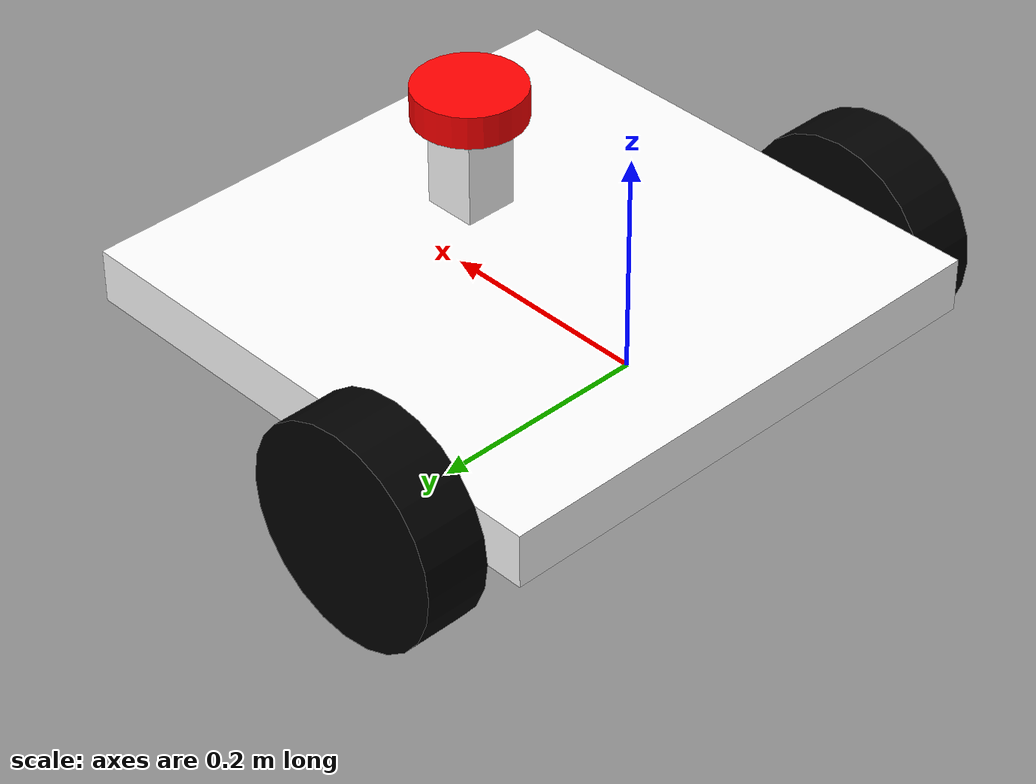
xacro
<?xml version="1.0"?>
<robot xmlns:xacro="http://www.ros.org/wiki/xacro"  name="robot">

    <xacro:arg name="use_ros2_control" default="true"/>
    <xacro:arg name="sim_mode" default="false"/>

    <xacro:include filename="robot_core.xacro" />

    <xacro:if value="$(arg use_ros2_control)">
        <xacro:include filename="ros2_control.xacro" />
    </xacro:if>
    <xacro:unless value="$(arg use_ros2_control)">
        <xacro:include filename="gazebo_control.xacro" />
    </xacro:unless>
    <xacro:include filename="lidar.xacro" />

</robot>

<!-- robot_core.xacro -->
<robot xmlns:xacro="http://www.ros.org/wiki/xacro">

    <xacro:include filename="inertial_macros.xacro"/>

    <material name="white">
        <color rgba="1 1 1 1"/>
    </material>

    <material name="orange">
        <color rgba="1 0.3 0.1 1"/>
    </material>

    <material name="blue">
        <color rgba="0.2 0.2 1 1"/>
    </material>

    <material name="black">
        <color rgba="0 0 0 1"/>
    </material>

    <material name="red">
        <color rgba="1 0 0 1"/>
    </material>

    <!-- BASE LINK -->

    <link name="base_link">

    </link>

    <!-- BASE FOOTPRINT -->

    <joint name="base_footprint_joint" type="fixed">
        <parent link="base_link"/>
        <child link="base_footprint"/>
        <origin xyz="0 0 0" rpy="0 0 0"/>
    </joint>

    <link name="base_footprint">
    </link>

    <!-- CHASSIS LINK -->

    <joint name="chassis_joint" type="fixed">
        <parent link="base_link"/>
        <child link="chassis"/>
        <origin xyz="-0.135 0 0"/>
    </joint>

    <link name="chassis">
        <visual>
            <origin xyz="0.25 0 0.025"/>
            <geometry>
                <box size="0.5 0.5 0.05"/>
            </geometry>
            <material name="white"/>
        </visual>
        <collision>
            <origin xyz="0.25 0 0.025"/>
            <geometry>
                <box size="0.5 0.5 0.05"/>
            </geometry>
        </collision>
        <xacro:inertial_box mass="1.5" x="0.5" y="0.5" z="0.05">
            <origin xyz="0.25 0 0.025" rpy="0 0 0"/>
        </xacro:inertial_box>
    </link>

    <gazebo reference="chassis">
        <material>Gazebo/White</material>
    </gazebo>

    <!-- LEFT WHEEL LINK -->

    <joint name="left_wheel_joint" type="continuous">
        <parent link="base_link"/>
        <child link="left_wheel"/>
        <origin xyz="0 0.28 0" rpy="-${pi/2} 0 0"/>
        <axis xyz="0 0 1"/>
    </joint>

    <link name="left_wheel">
        <visual>
            <geometry>
                <cylinder radius="0.1" length="0.06"/>
            </geometry>
            <material name="black"/>
        </visual>
        <collision>
            <geometry>
                <sphere radius="0.1"/>
            </geometry>
        </collision>
        <xacro:inertial_cylinder mass="1" length="0.06" radius="0.1">
            <origin xyz="0 0 0" rpy="0 0 0"/>
        </xacro:inertial_cylinder>
    </link>

    <gazebo reference="left_wheel">
        <material>Gazebo/Black</material>
    </gazebo>

    <!-- RIGHT WHEEL LINK -->

    <joint name="right_wheel_joint" type="continuous">
        <parent link="base_link"/>
        <child link="right_wheel"/>
        <origin xyz="0 -0.28 0" rpy="${pi/2} 0 0"/>
        <axis xyz="0 0 -1"/>
    </joint>

    <link name="right_wheel">
        <visual>
            <geometry>
                <cylinder radius="0.1" length="0.06"/>
            </geometry>
            <material name="black"/>
        </visual>
        <collision>
            <geometry>
                <sphere radius="0.1"/>
            </geometry>
        </collision>
        <xacro:inertial_cylinder mass="1" length="0.06" radius="0.1">
            <origin xyz="0 0 0" rpy="0 0 0"/>
        </xacro:inertial_cylinder>
    </link>

    <gazebo reference="right_wheel">
        <material>Gazebo/Black</material>
    </gazebo>

    <!-- CASTER WHEEL BASE LINK -->

    <joint name="caster_wheel_base_joint" type="fixed">
        <parent link="chassis"/>
        <child link="caster_wheel_base"/>
        <origin xyz="0.475 0 -0.025"/>
    </joint>

    <link name="caster_wheel_base">
        <visual>
            <geometry>
                <box size="0.05 0.05 0.05"/>
            </geometry>
            <material name="white"/>
        </visual>
        <collision>
            <geometry>
                <box size="0.05 0.05 0.05"/>
            </geometry>
        </collision>
        <xacro:inertial_box mass="0.1" x="0.05" y="0.05" z="0.05">
            <origin xyz="0 0 0" rpy="0 0 0"/>
        </xacro:inertial_box>
    </link>

    <gazebo reference="caster_wheel_base">
        <material>Gazebo/White</material>
    </gazebo>

    <!-- CASTER WHEEL LINK -->

    <joint name="caster_wheel_joint" type="fixed">
        <parent link="caster_wheel_base"/>
        <child link="caster_wheel"/>
        <origin xyz="0 0 -0.025"/>
    </joint>

    <link name="caster_wheel">
        <visual>
            <geometry>
                <sphere radius="0.05"/>
            </geometry>
            <material name="black"/>
        </visual>
        <collision>
            <geometry>
                <sphere radius="0.05"/>
            </geometry>
        </collision>
        <xacro:inertial_sphere mass="0.2" radius="0.05">
            <origin xyz="0 0 0" rpy="0 0 0"/>
        </xacro:inertial_sphere>
    </link>

    <gazebo reference="caster_wheel">
        <material>Gazebo/Black</material>
        <mu1 value="0.001"/>
        <mu2 value="0.001"/>
    </gazebo>

</robot>

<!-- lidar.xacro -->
<robot xmlns:xacro="http://www.ros.org/wiki/xacro">

    <joint name="laser_base_joint" type="fixed">
        <parent link="chassis"/>
        <child link="laser_base"/>
        <origin xyz="0.32 0 0.12"/>
    </joint>

    <link name="laser_base">
        <visual>
            <geometry>
                <box size="0.05 0.05 0.1"/>
            </geometry>
            <material name="white"/>
        </visual>
        <collision>
            <geometry>
                <box size="0.05 0.05 0.1"/>
            </geometry>
        </collision>
        <xacro:inertial_box mass="0.1" x="0.05" y="0.05" z="0.05">
            <origin xyz="0 0 0" rpy="0 0 0"/>
        </xacro:inertial_box>
    </link>

    <joint name="laser_joint" type="fixed">
            <parent link="laser_base"/>
            <child link="laser_frame"/> <!-- Se suele usar "Frame" aca y no "Link" -->
            <origin xyz="0 0 0.05" rpy="0 0 0"/>
    </joint>

    <link name="laser_frame">
        <visual>
            <geometry>
                <cylinder radius="0.05" length="0.03"/>
            </geometry>
            <material name="red"/>
        </visual>
        <collision>
            <geometry>
                <cylinder radius="0.05" length="0.03"/>
            </geometry>
        </collision>
        <xacro:inertial_cylinder mass="1" length="0.06" radius="0.1">
            <origin xyz="0 0 0" rpy="0 0 0"/>
        </xacro:inertial_cylinder>
    </link>

    <gazebo reference="laser_frame">
        <material>Gazebo/Red</material>

        <sensor name="laser" type="ray">
            <pose> 0 0 0 0 0 0 </pose>
            <visualize>true</visualize>
            <update_rate>10</update_rate>
            <ray>
                <scan>
                    <horizontal>
                        <samples>360</samples>
                        <min_angle>-3.14</min_angle>
                        <max_angle>3.14</max_angle>
                    </horizontal>
                </scan>
                <range>
                    <min>0.3</min>
                    <max>12</max>
                </range>
            </ray>
            <plugin name="laser_controller" filename="libgazebo_ros_ray_sensor.so">
                <ros>
                    <argument>~/out:=scan</argument>
                </ros>
                <output_type>sensor_msgs/LaserScan</output_type>
                <frame_name>laser_frame</frame_name>
            </plugin>
        </sensor>
    </gazebo>

</robot>
